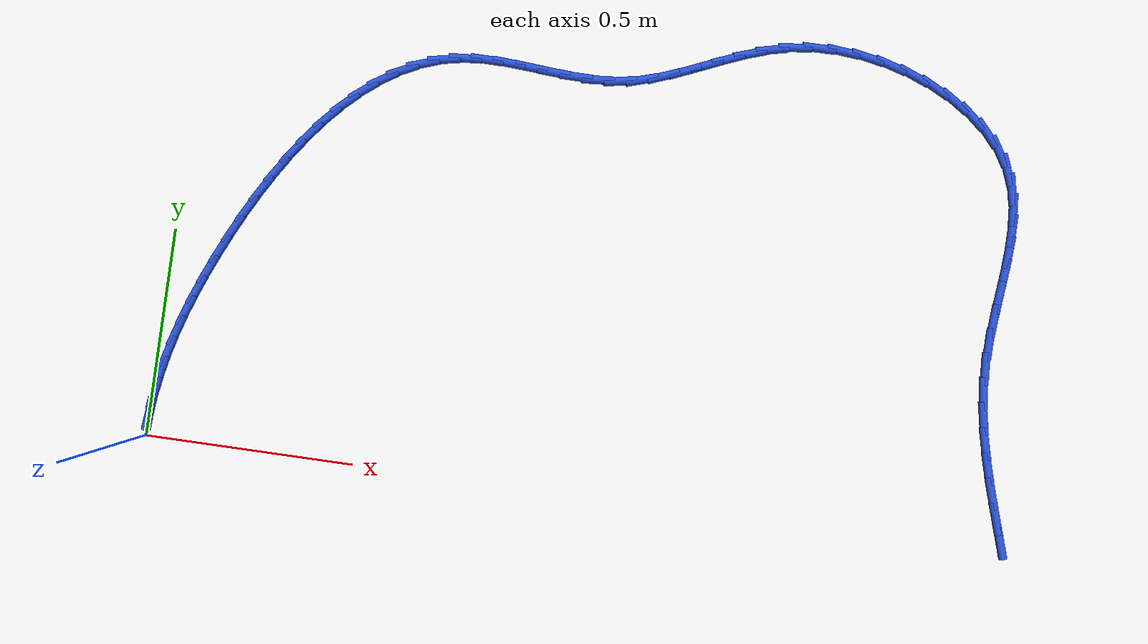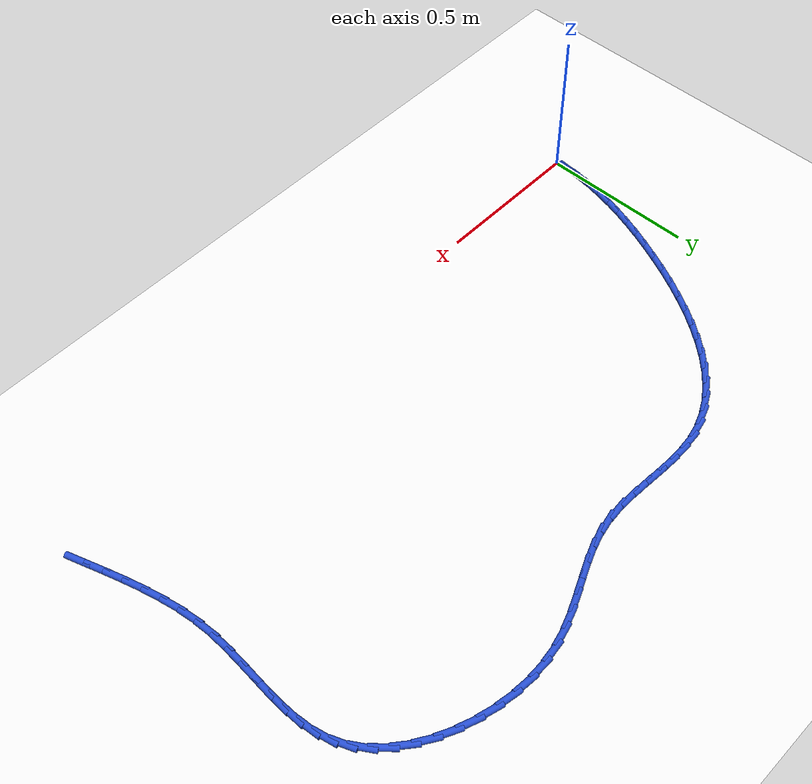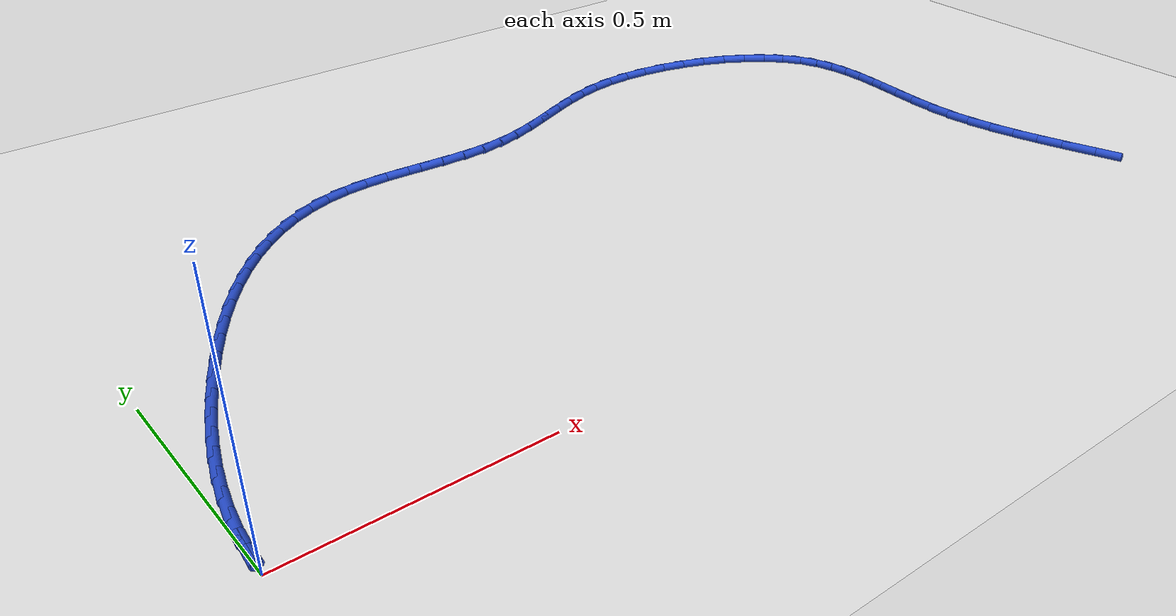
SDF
<sdf version="1.6">
 <world name="default">
  <model name="ground_plane">
   <static>1</static>
   <link name="link">
    <collision name="collision">
     <geometry><plane><normal>0 0 1</normal><size>100 100</size></plane></geometry>
     <surface><friction><ode><mu>100</mu><mu2>50</mu2></ode></friction></surface>
    </collision>
    <visual name="visual">
     <cast_shadows>0</cast_shadows>
     <geometry><plane><normal>0 0 1</normal><size>100 100</size></plane></geometry>
     <material>
      <script><uri>file://media/materials/scripts/gazebo.material</uri><name>Gazebo/WhiteGlow</name></script>
     </material>
    </visual>
   </link>
  </model>
  <model name="line">
   <link name="link_1">
    <pose>0.002270408061968017 0.05276042830729509 0.01 0 1.57 1.470868829247235</pose>
    <collision name="collision">
     <geometry><cylinder><radius>0.01</radius><length>0.08</length></cylinder></geometry>
    </collision>
    <visual name="visual">
     <material>
      <script><name>Gazebo/Blue</name><uri>file://media/materials/scripts/gazebo.material</uri></script>
     </material>
     <geometry><cylinder><radius>0.01</radius><length>0.08</length></cylinder></geometry>
    </visual>
   </link>
   <link name="link_2">
    <pose>0.0075126473766910905 0.10504612558109176 0.01 0 1.57 1.4164940085812834</pose>
    <collision name="collision">
     <geometry><cylinder><radius>0.01</radius><length>0.08</length></cylinder></geometry>
    </collision>
    <visual name="visual">
     <material>
      <script><name>Gazebo/Blue</name><uri>file://media/materials/scripts/gazebo.material</uri></script>
     </material>
     <geometry><cylinder><radius>0.01</radius><length>0.08</length></cylinder></geometry>
    </visual>
   </link>
   <link name="link_3">
    <pose>0.015590027971355436 0.15697777097114785 0.01 0 1.57 1.3653016029712846</pose>
    <collision name="collision">
     <geometry><cylinder><radius>0.01</radius><length>0.08</length></cylinder></geometry>
    </collision>
    <visual name="visual">
     <material>
      <script><name>Gazebo/Blue</name><uri>file://media/materials/scripts/gazebo.material</uri></script>
     </material>
     <geometry><cylinder><radius>0.01</radius><length>0.08</length></cylinder></geometry>
    </visual>
   </link>
   <link name="link_4">
    <pose>0.02636585987314727 0.2086760436272212 0.01 0 1.57 1.317784357786001</pose>
    <collision name="collision">
     <geometry><cylinder><radius>0.01</radius><length>0.08</length></cylinder></geometry>
    </collision>
    <visual name="visual">
     <material>
      <script><name>Gazebo/Blue</name><uri>file://media/materials/scripts/gazebo.material</uri></script>
     </material>
     <geometry><cylinder><radius>0.01</radius><length>0.08</length></cylinder></geometry>
    </visual>
   </link>
   <link name="link_5">
    <pose>0.039703453109252815 0.2602616226990695 0.01 0 1.57 1.2742866054867337</pose>
    <collision name="collision">
     <geometry><cylinder><radius>0.01</radius><length>0.08</length></cylinder></geometry>
    </collision>
    <visual name="visual">
     <material>
      <script><name>Gazebo/Blue</name><uri>file://media/materials/scripts/gazebo.material</uri></script>
     </material>
     <geometry><cylinder><radius>0.01</radius><length>0.08</length></cylinder></geometry>
    </visual>
   </link>
   <link name="link_6">
    <pose>0.05546611770685833 0.31185518733645073 0.01 0 1.57 1.23501286144615</pose>
    <collision name="collision">
     <geometry><cylinder><radius>0.01</radius><length>0.08</length></cylinder></geometry>
    </collision>
    <visual name="visual">
     <material>
      <script><name>Gazebo/Blue</name><uri>file://media/materials/scripts/gazebo.material</uri></script>
     </material>
     <geometry><cylinder><radius>0.01</radius><length>0.08</length></cylinder></geometry>
    </visual>
   </link>
   <link name="link_7">
    <pose>0.07351716369314999 0.36357741668912236 0.01 0 1.57 1.2000459407867357</pose>
    <collision name="collision">
     <geometry><cylinder><radius>0.01</radius><length>0.08</length></cylinder></geometry>
    </collision>
    <visual name="visual">
     <material>
      <script><name>Gazebo/Blue</name><uri>file://media/materials/scripts/gazebo.material</uri></script>
     </material>
     <geometry><cylinder><radius>0.01</radius><length>0.08</length></cylinder></geometry>
    </visual>
   </link>
   <link name="link_8">
    <pose>0.09371990109531414 0.41554898990684264 0.01 0 1.57 1.1693695447502377</pose>
    <collision name="collision">
     <geometry><cylinder><radius>0.01</radius><length>0.08</length></cylinder></geometry>
    </collision>
    <visual name="visual">
     <material>
      <script><name>Gazebo/Blue</name><uri>file://media/materials/scripts/gazebo.material</uri></script>
     </material>
     <geometry><cylinder><radius>0.01</radius><length>0.08</length></cylinder></geometry>
    </visual>
   </link>
   <link name="link_9">
    <pose>0.11593764553232364 0.4678905623043223 0.01 0 1.57 1.141486641878272</pose>
    <collision name="collision">
     <geometry><cylinder><radius>0.01</radius><length>0.08</length></cylinder></geometry>
    </collision>
    <visual name="visual">
     <material>
      <script><name>Gazebo/Blue</name><uri>file://media/materials/scripts/gazebo.material</uri></script>
     </material>
     <geometry><cylinder><radius>0.01</radius><length>0.08</length></cylinder></geometry>
    </visual>
   </link>
   <link name="link_10">
    <pose>0.14006413122564157 0.5205931296015612 0.01 0 1.57 1.1114165735339463</pose>
    <collision name="collision">
     <geometry><cylinder><radius>0.01</radius><length>0.08</length></cylinder></geometry>
    </collision>
    <visual name="visual">
     <material>
      <script><name>Gazebo/Blue</name><uri>file://media/materials/scripts/gazebo.material</uri></script>
     </material>
     <geometry><cylinder><radius>0.01</radius><length>0.08</length></cylinder></geometry>
    </visual>
   </link>
   <link name="link_11">
    <pose>0.16609470919438818 0.573214544911022 0.01 0 1.57 1.0776448980174542</pose>
    <collision name="collision">
     <geometry><cylinder><radius>0.01</radius><length>0.08</length></cylinder></geometry>
    </collision>
    <visual name="visual">
     <material>
      <script><name>Gazebo/Blue</name><uri>file://media/materials/scripts/gazebo.material</uri></script>
     </material>
     <geometry><cylinder><radius>0.01</radius><length>0.08</length></cylinder></geometry>
    </visual>
   </link>
   <link name="link_12">
    <pose>0.1940459244838642 0.625222321598435 0.01 0 1.57 1.0395138065769065</pose>
    <collision name="collision">
     <geometry><cylinder><radius>0.01</radius><length>0.08</length></cylinder></geometry>
    </collision>
    <visual name="visual">
     <material>
      <script><name>Gazebo/Blue</name><uri>file://media/materials/scripts/gazebo.material</uri></script>
     </material>
     <geometry><cylinder><radius>0.01</radius><length>0.08</length></cylinder></geometry>
    </visual>
   </link>
   <link name="link_13">
    <pose>0.22393432213937065 0.6760839730295309 0.01 0 1.57 0.9962363570801335</pose>
    <collision name="collision">
     <geometry><cylinder><radius>0.01</radius><length>0.08</length></cylinder></geometry>
    </collision>
    <visual name="visual">
     <material>
      <script><name>Gazebo/Blue</name><uri>file://media/materials/scripts/gazebo.material</uri></script>
     </material>
     <geometry><cylinder><radius>0.01</radius><length>0.08</length></cylinder></geometry>
    </visual>
   </link>
   <link name="link_14">
    <pose>0.25577644720620824 0.7252670125700403 0.01 0 1.57 0.9468770361966778</pose>
    <collision name="collision">
     <geometry><cylinder><radius>0.01</radius><length>0.08</length></cylinder></geometry>
    </collision>
    <visual name="visual">
     <material>
      <script><name>Gazebo/Blue</name><uri>file://media/materials/scripts/gazebo.material</uri></script>
     </material>
     <geometry><cylinder><radius>0.01</radius><length>0.08</length></cylinder></geometry>
    </visual>
   </link>
   <link name="link_15">
    <pose>0.28958884472967794 0.7722389535856934 0.01 0 1.57 0.8903391942135445</pose>
    <collision name="collision">
     <geometry><cylinder><radius>0.01</radius><length>0.08</length></cylinder></geometry>
    </collision>
    <visual name="visual">
     <material>
      <script><name>Gazebo/Blue</name><uri>file://media/materials/scripts/gazebo.material</uri></script>
     </material>
     <geometry><cylinder><radius>0.01</radius><length>0.08</length></cylinder></geometry>
    </visual>
   </link>
   <link name="link_16">
    <pose>0.32538805975508056 0.8164673094422209 0.01 0 1.57 0.8253706642925811</pose>
    <collision name="collision">
     <geometry><cylinder><radius>0.01</radius><length>0.08</length></cylinder></geometry>
    </collision>
    <visual name="visual">
     <material>
      <script><name>Gazebo/Blue</name><uri>file://media/materials/scripts/gazebo.material</uri></script>
     </material>
     <geometry><cylinder><radius>0.01</radius><length>0.08</length></cylinder></geometry>
    </visual>
   </link>
   <link name="link_17">
    <pose>0.36319063732771695 0.8574195935053534 0.01 0 1.57 0.7506078488577993</pose>
    <collision name="collision">
     <geometry><cylinder><radius>0.01</radius><length>0.08</length></cylinder></geometry>
    </collision>
    <visual name="visual">
     <material>
      <script><name>Gazebo/Blue</name><uri>file://media/materials/scripts/gazebo.material</uri></script>
     </material>
     <geometry><cylinder><radius>0.01</radius><length>0.08</length></cylinder></geometry>
    </visual>
   </link>
   <link name="link_18">
    <pose>0.40301312249288807 0.8945633191408213 0.01 0 1.57 0.664690490754485</pose>
    <collision name="collision">
     <geometry><cylinder><radius>0.01</radius><length>0.08</length></cylinder></geometry>
    </collision>
    <visual name="visual">
     <material>
      <script><name>Gazebo/Blue</name><uri>file://media/materials/scripts/gazebo.material</uri></script>
     </material>
     <geometry><cylinder><radius>0.01</radius><length>0.08</length></cylinder></geometry>
    </visual>
   </link>
   <link name="link_19">
    <pose>0.44487206029589454 0.9273659997143547 0.01 0 1.57 0.5664891257531343</pose>
    <collision name="collision">
     <geometry><cylinder><radius>0.01</radius><length>0.08</length></cylinder></geometry>
    </collision>
    <visual name="visual">
     <material>
      <script><name>Gazebo/Blue</name><uri>file://media/materials/scripts/gazebo.material</uri></script>
     </material>
     <geometry><cylinder><radius>0.01</radius><length>0.08</length></cylinder></geometry>
    </visual>
   </link>
   <link name="link_20">
    <pose>0.4887839957820374 0.955295148591685 0.01 0 1.57 0.4554789629746075</pose>
    <collision name="collision">
     <geometry><cylinder><radius>0.01</radius><length>0.08</length></cylinder></geometry>
    </collision>
    <visual name="visual">
     <material>
      <script><name>Gazebo/Blue</name><uri>file://media/materials/scripts/gazebo.material</uri></script>
     </material>
     <geometry><cylinder><radius>0.01</radius><length>0.08</length></cylinder></geometry>
    </visual>
   </link>
   <link name="link_21">
    <pose>0.5347654739966174 0.977818279138542 0.01 0 1.57 0.33223800388277797</pose>
    <collision name="collision">
     <geometry><cylinder><radius>0.01</radius><length>0.08</length></cylinder></geometry>
    </collision>
    <visual name="visual">
     <material>
      <script><name>Gazebo/Blue</name><uri>file://media/materials/scripts/gazebo.material</uri></script>
     </material>
     <geometry><cylinder><radius>0.01</radius><length>0.08</length></cylinder></geometry>
    </visual>
   </link>
   <link name="link_22">
    <pose>0.5828330399849356 0.9944029047206563 0.01 0 1.57 0.19922002442832298</pose>
    <collision name="collision">
     <geometry><cylinder><radius>0.01</radius><length>0.08</length></cylinder></geometry>
    </collision>
    <visual name="visual">
     <material>
      <script><name>Gazebo/Blue</name><uri>file://media/materials/scripts/gazebo.material</uri></script>
     </material>
     <geometry><cylinder><radius>0.01</radius><length>0.08</length></cylinder></geometry>
    </visual>
   </link>
   <link name="link_23">
    <pose>0.6329997828230707 1.0045314766834184 0.01 0 1.57 0.07714982696047969</pose>
    <collision name="collision">
     <geometry><cylinder><radius>0.01</radius><length>0.08</length></cylinder></geometry>
    </collision>
    <visual name="visual">
     <material>
      <script><name>Gazebo/Blue</name><uri>file://media/materials/scripts/gazebo.material</uri></script>
     </material>
     <geometry><cylinder><radius>0.01</radius><length>0.08</length></cylinder></geometry>
    </visual>
   </link>
   <link name="link_24">
    <pose>0.6850773293533521 1.0085572408025116 0.01 0 1.57 -0.007263136267072867</pose>
    <collision name="collision">
     <geometry><cylinder><radius>0.01</radius><length>0.08</length></cylinder></geometry>
    </collision>
    <visual name="visual">
     <material>
      <script><name>Gazebo/Blue</name><uri>file://media/materials/scripts/gazebo.material</uri></script>
     </material>
     <geometry><cylinder><radius>0.01</radius><length>0.08</length></cylinder></geometry>
    </visual>
   </link>
   <link name="link_25">
    <pose>0.7385683837382888 1.0081687211535422 0.01 0 1.57 -0.05513035835663338</pose>
    <collision name="collision">
     <geometry><cylinder><radius>0.01</radius><length>0.08</length></cylinder></geometry>
    </collision>
    <visual name="visual">
     <material>
      <script><name>Gazebo/Blue</name><uri>file://media/materials/scripts/gazebo.material</uri></script>
     </material>
     <geometry><cylinder><radius>0.01</radius><length>0.08</length></cylinder></geometry>
    </visual>
   </link>
   <link name="link_26">
    <pose>0.7929494631517319 1.0051676316812332 0.01 0 1.57 -0.06951540521207505</pose>
    <collision name="collision">
     <geometry><cylinder><radius>0.01</radius><length>0.08</length></cylinder></geometry>
    </collision>
    <visual name="visual">
     <material>
      <script><name>Gazebo/Blue</name><uri>file://media/materials/scripts/gazebo.material</uri></script>
     </material>
     <geometry><cylinder><radius>0.01</radius><length>0.08</length></cylinder></geometry>
    </visual>
   </link>
   <link name="link_27">
    <pose>0.8476970847675315 1.0013556863303072 0.01 0 1.57 -0.051631157406376894</pose>
    <collision name="collision">
     <geometry><cylinder><radius>0.01</radius><length>0.08</length></cylinder></geometry>
    </collision>
    <visual name="visual">
     <material>
      <script><name>Gazebo/Blue</name><uri>file://media/materials/scripts/gazebo.material</uri></script>
     </material>
     <geometry><cylinder><radius>0.01</radius><length>0.08</length></cylinder></geometry>
    </visual>
   </link>
   <link name="link_28">
    <pose>0.9022877657595385 0.9985345990454877 0.01 0 1.57 -0.000528939623586512</pose>
    <collision name="collision">
     <geometry><cylinder><radius>0.01</radius><length>0.08</length></cylinder></geometry>
    </collision>
    <visual name="visual">
     <material>
      <script><name>Gazebo/Blue</name><uri>file://media/materials/scripts/gazebo.material</uri></script>
     </material>
     <geometry><cylinder><radius>0.01</radius><length>0.08</length></cylinder></geometry>
    </visual>
   </link>
   <link name="link_29">
    <pose>0.9561980233016032 0.9985060837714966 0.01 0 1.57 0.08641085859525326</pose>
    <collision name="collision">
     <geometry><cylinder><radius>0.01</radius><length>0.08</length></cylinder></geometry>
    </collision>
    <visual name="visual">
     <material>
      <script><name>Gazebo/Blue</name><uri>file://media/materials/scripts/gazebo.material</uri></script>
     </material>
     <geometry><cylinder><radius>0.01</radius><length>0.08</length></cylinder></geometry>
    </visual>
   </link>
   <link name="link_30">
    <pose>1.0089043745675763 1.003071854453057 0.01 0 1.57 0.20430303279015605</pose>
    <collision name="collision">
     <geometry><cylinder><radius>0.01</radius><length>0.08</length></cylinder></geometry>
    </collision>
    <visual name="visual">
     <material>
      <script><name>Gazebo/Blue</name><uri>file://media/materials/scripts/gazebo.material</uri></script>
     </material>
     <geometry><cylinder><radius>0.01</radius><length>0.08</length></cylinder></geometry>
    </visual>
   </link>
   <link name="link_31">
    <pose>1.0600028138549953 1.0136591355150641 0.01 0 1.57 0.30722715404902473</pose>
    <collision name="collision">
     <geometry><cylinder><radius>0.01</radius><length>0.08</length></cylinder></geometry>
    </collision>
    <visual name="visual">
     <material>
      <script><name>Gazebo/Blue</name><uri>file://media/materials/scripts/gazebo.material</uri></script>
     </material>
     <geometry><cylinder><radius>0.01</radius><length>0.08</length></cylinder></geometry>
    </visual>
   </link>
   <link name="link_32">
    <pose>1.1098026687231424 1.0294592770792366 0.01 0 1.57 0.376078813913436</pose>
    <collision name="collision">
     <geometry><cylinder><radius>0.01</radius><length>0.08</length></cylinder></geometry>
    </collision>
    <visual name="visual">
     <material>
      <script><name>Gazebo/Blue</name><uri>file://media/materials/scripts/gazebo.material</uri></script>
     </material>
     <geometry><cylinder><radius>0.01</radius><length>0.08</length></cylinder></geometry>
    </visual>
   </link>
   <link name="link_33">
    <pose>1.1588768792087603 1.0488373613838817 0.01 0 1.57 0.4109759613678666</pose>
    <collision name="collision">
     <geometry><cylinder><radius>0.01</radius><length>0.08</length></cylinder></geometry>
    </collision>
    <visual name="visual">
     <material>
      <script><name>Gazebo/Blue</name><uri>file://media/materials/scripts/gazebo.material</uri></script>
     </material>
     <geometry><cylinder><radius>0.01</radius><length>0.08</length></cylinder></geometry>
    </visual>
   </link>
   <link name="link_34">
    <pose>1.2077988075110488 1.0701571474398075 0.01 0 1.57 0.4130512252037141</pose>
    <collision name="collision">
     <geometry><cylinder><radius>0.01</radius><length>0.08</length></cylinder></geometry>
    </collision>
    <visual name="visual">
     <material>
      <script><name>Gazebo/Blue</name><uri>file://media/materials/scripts/gazebo.material</uri></script>
     </material>
     <geometry><cylinder><radius>0.01</radius><length>0.08</length></cylinder></geometry>
    </visual>
   </link>
   <link name="link_35">
    <pose>1.257141815829207 1.0917823942578202 0.01 0 1.57 0.38323472087773924</pose>
    <collision name="collision">
     <geometry><cylinder><radius>0.01</radius><length>0.08</length></cylinder></geometry>
    </collision>
    <visual name="visual">
     <material>
      <script><name>Gazebo/Blue</name><uri>file://media/materials/scripts/gazebo.material</uri></script>
     </material>
     <geometry><cylinder><radius>0.01</radius><length>0.08</length></cylinder></geometry>
    </visual>
   </link>
   <link name="link_36">
    <pose>1.3074792663624344 1.112076860848728 0.01 0 1.57 0.322195999041002</pose>
    <collision name="collision">
     <geometry><cylinder><radius>0.01</radius><length>0.08</length></cylinder></geometry>
    </collision>
    <visual name="visual">
     <material>
      <script><name>Gazebo/Blue</name><uri>file://media/materials/scripts/gazebo.material</uri></script>
     </material>
     <geometry><cylinder><radius>0.01</radius><length>0.08</length></cylinder></geometry>
    </visual>
   </link>
   <link name="link_37">
    <pose>1.3593845213099294 1.129404306223337 0.01 0 1.57 0.23122001591649968</pose>
    <collision name="collision">
     <geometry><cylinder><radius>0.01</radius><length>0.08</length></cylinder></geometry>
    </collision>
    <visual name="visual">
     <material>
      <script><name>Gazebo/Blue</name><uri>file://media/materials/scripts/gazebo.material</uri></script>
     </material>
     <geometry><cylinder><radius>0.01</radius><length>0.08</length></cylinder></geometry>
    </visual>
   </link>
   <link name="link_38">
    <pose>1.4134309428708929 1.1421284893924548 0.01 0 1.57 0.11758823405174085</pose>
    <collision name="collision">
     <geometry><cylinder><radius>0.01</radius><length>0.08</length></cylinder></geometry>
    </collision>
    <visual name="visual">
     <material>
      <script><name>Gazebo/Blue</name><uri>file://media/materials/scripts/gazebo.material</uri></script>
     </material>
     <geometry><cylinder><radius>0.01</radius><length>0.08</length></cylinder></geometry>
    </visual>
   </link>
   <link name="link_39">
    <pose>1.4700201059944178 1.148813549013747 0.01 0 1.57 0.007961815317875055</pose>
    <collision name="collision">
     <geometry><cylinder><radius>0.01</radius><length>0.08</length></cylinder></geometry>
    </collision>
    <visual name="visual">
     <material>
      <script><name>Gazebo/Blue</name><uri>file://media/materials/scripts/gazebo.material</uri></script>
     </material>
     <geometry><cylinder><radius>0.01</radius><length>0.08</length></cylinder></geometry>
    </visual>
   </link>
   <link name="link_40">
    <pose>1.5284773535746263 1.1492789846577467 0.01 0 1.57 -0.09174141062625334</pose>
    <collision name="collision">
     <geometry><cylinder><radius>0.01</radius><length>0.08</length></cylinder></geometry>
    </collision>
    <visual name="visual">
     <material>
      <script><name>Gazebo/Blue</name><uri>file://media/materials/scripts/gazebo.material</uri></script>
     </material>
     <geometry><cylinder><radius>0.01</radius><length>0.08</length></cylinder></geometry>
    </visual>
   </link>
   <link name="link_41">
    <pose>1.5877121407033503 1.143829404370178 0.01 0 1.57 -0.18553286710587838</pose>
    <collision name="collision">
     <geometry><cylinder><radius>0.01</radius><length>0.08</length></cylinder></geometry>
    </collision>
    <visual name="visual">
     <material>
      <script><name>Gazebo/Blue</name><uri>file://media/materials/scripts/gazebo.material</uri></script>
     </material>
     <geometry><cylinder><radius>0.01</radius><length>0.08</length></cylinder></geometry>
    </visual>
   </link>
   <link name="link_42">
    <pose>1.6466330284693764 1.1327704589983332 0.01 0 1.57 -0.27716838663735344</pose>
    <collision name="collision">
     <geometry><cylinder><radius>0.01</radius><length>0.08</length></cylinder></geometry>
    </collision>
    <visual name="visual">
     <material>
      <script><name>Gazebo/Blue</name><uri>file://media/materials/scripts/gazebo.material</uri></script>
     </material>
     <geometry><cylinder><radius>0.01</radius><length>0.08</length></cylinder></geometry>
    </visual>
   </link>
   <link name="link_43">
    <pose>1.7041485779614924 1.1164077993895063 0.01 0 1.57 -0.37033122841074545</pose>
    <collision name="collision">
     <geometry><cylinder><radius>0.01</radius><length>0.08</length></cylinder></geometry>
    </collision>
    <visual name="visual">
     <material>
      <script><name>Gazebo/Blue</name><uri>file://media/materials/scripts/gazebo.material</uri></script>
     </material>
     <geometry><cylinder><radius>0.01</radius><length>0.08</length></cylinder></geometry>
    </visual>
   </link>
   <link name="link_44">
    <pose>1.759167350268485 1.0950470763909905 0.01 0 1.57 -0.4688891450893817</pose>
    <collision name="collision">
     <geometry><cylinder><radius>0.01</radius><length>0.08</length></cylinder></geometry>
    </collision>
    <visual name="visual">
     <material>
      <script><name>Gazebo/Blue</name><uri>file://media/materials/scripts/gazebo.material</uri></script>
     </material>
     <geometry><cylinder><radius>0.01</radius><length>0.08</length></cylinder></geometry>
    </visual>
   </link>
   <link name="link_45">
    <pose>1.8105979064791409 1.0689939408500795 0.01 0 1.57 -0.5771539087266081</pose>
    <collision name="collision">
     <geometry><cylinder><radius>0.01</radius><length>0.08</length></cylinder></geometry>
    </collision>
    <visual name="visual">
     <material>
      <script><name>Gazebo/Blue</name><uri>file://media/materials/scripts/gazebo.material</uri></script>
     </material>
     <geometry><cylinder><radius>0.01</radius><length>0.08</length></cylinder></geometry>
    </visual>
   </link>
   <link name="link_46">
    <pose>1.8573488076822486 1.0385540436140663 0.01 0 1.57 -0.7000598456604517</pose>
    <collision name="collision">
     <geometry><cylinder><radius>0.01</radius><length>0.08</length></cylinder></geometry>
    </collision>
    <visual name="visual">
     <material>
      <script><name>Gazebo/Blue</name><uri>file://media/materials/scripts/gazebo.material</uri></script>
     </material>
     <geometry><cylinder><radius>0.01</radius><length>0.08</length></cylinder></geometry>
    </visual>
   </link>
   <link name="link_47">
    <pose>1.8983286149665952 1.0040330355302445 0.01 0 1.57 -0.8430469296998583</pose>
    <collision name="collision">
     <geometry><cylinder><radius>0.01</radius><length>0.08</length></cylinder></geometry>
    </collision>
    <visual name="visual">
     <material>
      <script><name>Gazebo/Blue</name><uri>file://media/materials/scripts/gazebo.material</uri></script>
     </material>
     <geometry><cylinder><radius>0.01</radius><length>0.08</length></cylinder></geometry>
    </visual>
   </link>
   <link name="link_48">
    <pose>1.9324458894209655 0.9657365674459072 0.01 0 1.57 -1.0111741607917497</pose>
    <collision name="collision">
     <geometry><cylinder><radius>0.01</radius><length>0.08</length></cylinder></geometry>
    </collision>
    <visual name="visual">
     <material>
      <script><name>Gazebo/Blue</name><uri>file://media/materials/scripts/gazebo.material</uri></script>
     </material>
     <geometry><cylinder><radius>0.01</radius><length>0.08</length></cylinder></geometry>
    </visual>
   </link>
   <link name="link_49">
    <pose>1.9586092588926847 0.9239702906061502 0.01 0 1.57 -1.1970551066549884</pose>
    <collision name="collision">
     <geometry><cylinder><radius>0.01</radius><length>0.08</length></cylinder></geometry>
    </collision>
    <visual name="visual">
     <material>
      <script><name>Gazebo/Blue</name><uri>file://media/materials/scripts/gazebo.material</uri></script>
     </material>
     <geometry><cylinder><radius>0.01</radius><length>0.08</length></cylinder></geometry>
    </visual>
   </link>
   <link name="link_50">
    <pose>1.9762286121894088 0.8790428431771078 0.01 0 1.57 -1.360587005633176</pose>
    <collision name="collision">
     <geometry><cylinder><radius>0.01</radius><length>0.08</length></cylinder></geometry>
    </collision>
    <visual name="visual">
     <material>
      <script><name>Gazebo/Blue</name><uri>file://media/materials/scripts/gazebo.material</uri></script>
     </material>
     <geometry><cylinder><radius>0.01</radius><length>0.08</length></cylinder></geometry>
    </visual>
   </link>
   <link name="link_51">
    <pose>1.9864208398257037 0.831273035031306 0.01 0 1.57 -1.486586898707859</pose>
    <collision name="collision">
     <geometry><cylinder><radius>0.01</radius><length>0.08</length></cylinder></geometry>
    </collision>
    <visual name="visual">
     <material>
      <script><name>Gazebo/Blue</name><uri>file://media/materials/scripts/gazebo.material</uri></script>
     </material>
     <geometry><cylinder><radius>0.01</radius><length>0.08</length></cylinder></geometry>
    </visual>
   </link>
   <link name="link_52">
    <pose>1.9906658715631316 0.7809818393247718 0.01 0 1.57 1.5665626393233538</pose>
    <collision name="collision">
     <geometry><cylinder><radius>0.01</radius><length>0.08</length></cylinder></geometry>
    </collision>
    <visual name="visual">
     <material>
      <script><name>Gazebo/Blue</name><uri>file://media/materials/scripts/gazebo.material</uri></script>
     </material>
     <geometry><cylinder><radius>0.01</radius><length>0.08</length></cylinder></geometry>
    </visual>
   </link>
   <link name="link_53">
    <pose>1.9904436371632563 0.7284902292135318 0.01 0 1.57 1.5118338752722125</pose>
    <collision name="collision">
     <geometry><cylinder><radius>0.01</radius><length>0.08</length></cylinder></geometry>
    </collision>
    <visual name="visual">
     <material>
      <script><name>Gazebo/Blue</name><uri>file://media/materials/scripts/gazebo.material</uri></script>
     </material>
     <geometry><cylinder><radius>0.01</radius><length>0.08</length></cylinder></geometry>
    </visual>
   </link>
   <link name="link_54">
    <pose>1.9872340663876378 0.6741191778536116 0.01 0 1.57 1.4866575542647311</pose>
    <collision name="collision">
     <geometry><cylinder><radius>0.01</radius><length>0.08</length></cylinder></geometry>
    </collision>
    <visual name="visual">
     <material>
      <script><name>Gazebo/Blue</name><uri>file://media/materials/scripts/gazebo.material</uri></script>
     </material>
     <geometry><cylinder><radius>0.01</radius><length>0.08</length></cylinder></geometry>
    </visual>
   </link>
   <link name="link_55">
    <pose>1.9825170889978403 0.6181896584010392 0.01 0 1.57 1.4879932258302249</pose>
    <collision name="collision">
     <geometry><cylinder><radius>0.01</radius><length>0.08</length></cylinder></geometry>
    </collision>
    <visual name="visual">
     <material>
      <script><name>Gazebo/Blue</name><uri>file://media/materials/scripts/gazebo.material</uri></script>
     </material>
     <geometry><cylinder><radius>0.01</radius><length>0.08</length></cylinder></geometry>
    </visual>
   </link>
   <link name="link_56">
    <pose>1.9777726347554248 0.561022644011841 0.01 0 1.57 1.5141798846645522</pose>
    <collision name="collision">
     <geometry><cylinder><radius>0.01</radius><length>0.08</length></cylinder></geometry>
    </collision>
    <visual name="visual">
     <material>
      <script><name>Gazebo/Blue</name><uri>file://media/materials/scripts/gazebo.material</uri></script>
     </material>
     <geometry><cylinder><radius>0.01</radius><length>0.08</length></cylinder></geometry>
    </visual>
   </link>
   <link name="link_57">
    <pose>1.974480633421953 0.5029391078420431 0.01 0 1.57 1.5646678371979499</pose>
    <collision name="collision">
     <geometry><cylinder><radius>0.01</radius><length>0.08</length></cylinder></geometry>
    </collision>
    <visual name="visual">
     <material>
      <script><name>Gazebo/Blue</name><uri>file://media/materials/scripts/gazebo.material</uri></script>
     </material>
     <geometry><cylinder><radius>0.01</radius><length>0.08</length></cylinder></geometry>
    </visual>
   </link>
   <link name="link_58">
    <pose>1.974121014758989 0.44426002304767237 0.01 0 1.57 -1.5032980555829496</pose>
    <collision name="collision">
     <geometry><cylinder><radius>0.01</radius><length>0.08</length></cylinder></geometry>
    </collision>
    <visual name="visual">
     <material>
      <script><name>Gazebo/Blue</name><uri>file://media/materials/scripts/gazebo.material</uri></script>
     </material>
     <geometry><cylinder><radius>0.01</radius><length>0.08</length></cylinder></geometry>
    </visual>
   </link>
   <link name="link_59">
    <pose>1.9781066397035398 0.38530191677306186 0.01 0 1.57 -1.4269447262733872</pose>
    <collision name="collision">
     <geometry><cylinder><radius>0.01</radius><length>0.08</length></cylinder></geometry>
    </collision>
    <visual name="visual">
     <material>
      <script><name>Gazebo/Blue</name><uri>file://media/materials/scripts/gazebo.material</uri></script>
     </material>
     <geometry><cylinder><radius>0.01</radius><length>0.08</length></cylinder></geometry>
    </visual>
   </link>
   <link name="link_60">
    <pose>1.9866529129403585 0.32630193644275063 0.01 0 1.57 -1.3649971137927748</pose>
    <collision name="collision">
     <geometry><cylinder><radius>0.01</radius><length>0.08</length></cylinder></geometry>
    </collision>
    <visual name="visual">
     <material>
      <script><name>Gazebo/Blue</name><uri>file://media/materials/scripts/gazebo.material</uri></script>
     </material>
     <geometry><cylinder><radius>0.01</radius><length>0.08</length></cylinder></geometry>
    </visual>
   </link>
   <link name="link_61">
    <pose>1.9989429581866118 0.2674287992786683 0.01 0 1.57 -1.3171898073287613</pose>
    <collision name="collision">
     <geometry><cylinder><radius>0.01</radius><length>0.08</length></cylinder></geometry>
    </collision>
    <visual name="visual">
     <material>
      <script><name>Gazebo/Blue</name><uri>file://media/materials/scripts/gazebo.material</uri></script>
     </material>
     <geometry><cylinder><radius>0.01</radius><length>0.08</length></cylinder></geometry>
    </visual>
   </link>
   <link name="link_62">
    <pose>2.014126093707922 0.2088489815296265 0.01 0 1.57 -1.282665010042047</pose>
    <collision name="collision">
     <geometry><cylinder><radius>0.01</radius><length>0.08</length></cylinder></geometry>
    </collision>
    <visual name="visual">
     <material>
      <script><name>Gazebo/Blue</name><uri>file://media/materials/scripts/gazebo.material</uri></script>
     </material>
     <geometry><cylinder><radius>0.01</radius><length>0.08</length></cylinder></geometry>
    </visual>
   </link>
   <link name="link_63">
    <pose>2.031351637769911 0.15072895944443795 0.01 0 1.57 -1.2607893652091782</pose>
    <collision name="collision">
     <geometry><cylinder><radius>0.01</radius><length>0.08</length></cylinder></geometry>
    </collision>
    <visual name="visual">
     <material>
      <script><name>Gazebo/Blue</name><uri>file://media/materials/scripts/gazebo.material</uri></script>
     </material>
     <geometry><cylinder><radius>0.01</radius><length>0.08</length></cylinder></geometry>
    </visual>
   </link>
   <link name="link_64">
    <pose>2.0497689086382005 0.09323520927191521 0.01 0 1.57 -1.2513016788126106</pose>
    <collision name="collision">
     <geometry><cylinder><radius>0.01</radius><length>0.08</length></cylinder></geometry>
    </collision>
    <visual name="visual">
     <material>
      <script><name>Gazebo/Blue</name><uri>file://media/materials/scripts/gazebo.material</uri></script>
     </material>
     <geometry><cylinder><radius>0.01</radius><length>0.08</length></cylinder></geometry>
    </visual>
   </link>
   <link name="link_65">
    <pose>2.0685272245784123 0.03653420726086995 0.01 0 1.57 -1.2544143423129819</pose>
    <collision name="collision">
     <geometry><cylinder><radius>0.01</radius><length>0.08</length></cylinder></geometry>
    </collision>
    <visual name="visual">
     <material>
      <script><name>Gazebo/Blue</name><uri>file://media/materials/scripts/gazebo.material</uri></script>
     </material>
     <geometry><cylinder><radius>0.01</radius><length>0.08</length></cylinder></geometry>
    </visual>
   </link>
   <link name="link_131">
    <pose>0.002297479375006139 0.052693825590291475 0.01 0 1.57 1.527223381276332</pose>
    <collision name="collision">
     <geometry><cylinder><radius>0.01</radius><length>0.08</length></cylinder></geometry>
    </collision>
    <visual name="visual">
     <material>
      <script><name>Gazebo/Blue</name><uri>file://media/materials/scripts/gazebo.material</uri></script>
     </material>
     <geometry><cylinder><radius>0.01</radius><length>0.08</length></cylinder></geometry>
    </visual>
   </link>
  </model>
 </world>
</sdf>
